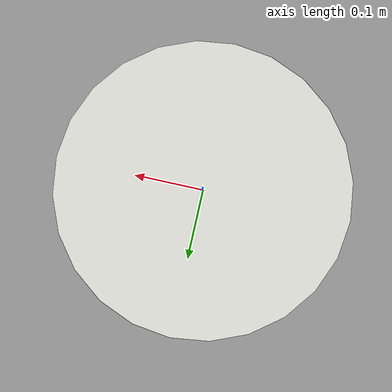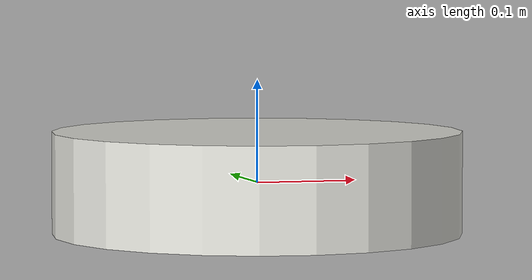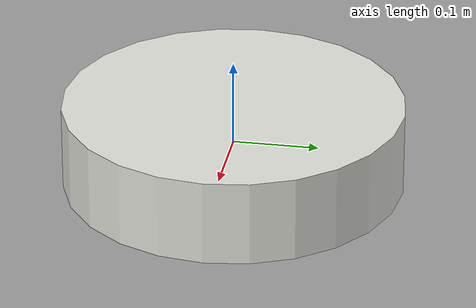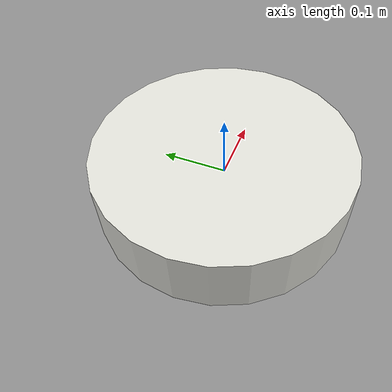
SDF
<?xml version="1.0"?>
<sdf version="1.9">
  <model name="sweepi">
    <pose>0 0 0 0 0 0</pose>

    <link name="base_footprint"/>

    <link name="base_link">
      <inertial>
        <mass>3.0</mass>
        <inertia>
          <ixx>0.0208</ixx>
          <ixy>0.0</ixy>
          <ixz>0.0</ixz>
          <iyy>0.0208</iyy>
          <iyz>0.0</iyz>
          <izz>0.0300</izz>
        </inertia>
      </inertial>

      <collision name="base_collision">
        <geometry>
          <cylinder>
            <radius>0.200</radius>
            <length>0.100</length>
          </cylinder>
        </geometry>
      </collision>

      <visual name="base_visual">
        <geometry>
          <cylinder>
            <radius>0.200</radius>
            <length>0.100</length>
          </cylinder>
        </geometry>
        <material>
          <ambient>0.88 0.88 0.85 1.0</ambient>
          <diffuse>0.88 0.88 0.85 1.0</diffuse>
        </material>
      </visual>
    </link>

    <link name="left_wheel_link">
      <inertial>
        <mass>0.15</mass>
        <inertia>
          <ixx>0.00005</ixx>
          <ixy>0.0</ixy>
          <ixz>0.0</ixz>
          <iyy>0.00005</iyy>
          <iyz>0.0</iyz>
          <izz>0.00009</izz>
        </inertia>
      </inertial>

      <collision name="wheel_left_collision">
        <pose>0 0 0 1.5708 0 0</pose>
        <geometry>
          <cylinder>
            <radius>0.025</radius>
            <length>0.020</length>
          </cylinder>
        </geometry>
      </collision>

      <visual name="wheel_left_visual">
        <pose>0 0 0 1.5708 0 0</pose>
        <geometry>
          <cylinder>
            <radius>0.025</radius>
            <length>0.020</length>
          </cylinder>
        </geometry>
        <material>
          <ambient>0.1 0.1 0.1 1.0</ambient>
          <diffuse>0.1 0.1 0.1 1.0</diffuse>
        </material>
      </visual>
    </link>

    <link name="right_wheel_link">
      <inertial>
        <mass>0.15</mass>
        <inertia>
          <ixx>0.00005</ixx>
          <ixy>0.0</ixy>
          <ixz>0.0</ixz>
          <iyy>0.00005</iyy>
          <iyz>0.0</iyz>
          <izz>0.00009</izz>
        </inertia>
      </inertial>

      <collision name="wheel_right_collision">
        <pose>0 0 0 1.5708 0 0</pose>
        <geometry>
          <cylinder>
            <radius>0.025</radius>
            <length>0.020</length>
          </cylinder>
        </geometry>
      </collision>

      <visual name="wheel_right_visual">
        <pose>0 0 0 1.5708 0 0</pose>
        <geometry>
          <cylinder>
            <radius>0.025</radius>
            <length>0.020</length>
          </cylinder>
        </geometry>
        <material>
          <ambient>0.1 0.1 0.1 1.0</ambient>
          <diffuse>0.1 0.1 0.1 1.0</diffuse>
        </material>
      </visual>
    </link>

    <link name="front_caster_link">
      <inertial>
        <mass>0.05</mass>
        <inertia>
          <ixx>0.00001</ixx>
          <ixy>0.0</ixy>
          <ixz>0.0</ixz>
          <iyy>0.00001</iyy>
          <iyz>0.0</iyz>
          <izz>0.00001</izz>
        </inertia>
      </inertial>

      <collision name="front_caster_collision">
        <geometry>
          <sphere>
            <radius>0.010</radius>
          </sphere>
        </geometry>
      </collision>

      <visual name="front_caster_visual">
        <geometry>
          <sphere>
            <radius>0.010</radius>
          </sphere>
        </geometry>
        <material>
          <ambient>0.90 0.48 0.13 1.0</ambient>
          <diffuse>0.90 0.48 0.13 1.0</diffuse>
        </material>
      </visual>
    </link>

    <link name="rear_caster_link">
      <inertial>
        <mass>0.05</mass>
        <inertia>
          <ixx>0.00001</ixx>
          <ixy>0.0</ixy>
          <ixz>0.0</ixz>
          <iyy>0.00001</iyy>
          <iyz>0.0</iyz>
          <izz>0.00001</izz>
        </inertia>
      </inertial>

      <collision name="rear_caster_collision">
        <geometry>
          <sphere>
            <radius>0.010</radius>
          </sphere>
        </geometry>
      </collision>

      <visual name="rear_caster_visual">
        <geometry>
          <sphere>
            <radius>0.010</radius>
          </sphere>
        </geometry>
        <material>
          <ambient>0.90 0.48 0.13 1.0</ambient>
          <diffuse>0.90 0.48 0.13 1.0</diffuse>
        </material>
      </visual>
    </link>

    <link name="lidar_link">
      <inertial>
        <mass>0.17</mass>
        <inertia>
          <ixx>0.0001</ixx>
          <ixy>0.0</ixy>
          <ixz>0.0</ixz>
          <iyy>0.0001</iyy>
          <iyz>0.0</iyz>
          <izz>0.0001</izz>
        </inertia>
      </inertial>

      <collision name="lidar_collision">
        <geometry>
          <cylinder>
            <radius>0.038</radius>
            <length>0.041</length>
          </cylinder>
        </geometry>
      </collision>

      <visual name="lidar_visual">
        <geometry>
          <cylinder>
            <radius>0.038</radius>
            <length>0.041</length>
          </cylinder>
        </geometry>
        <material>
          <ambient>0.2 0.2 0.2 1.0</ambient>
          <diffuse>0.2 0.2 0.2 1.0</diffuse>
        </material>
      </visual>

      <sensor name="gpu_lidar" type="gpu_lidar">
        <topic>scan</topic>
        <update_rate>10</update_rate>
        <always_on>true</always_on>
        <visualize>true</visualize>
        <lidar>
          <scan>
            <horizontal>
              <samples>720</samples>
              <resolution>1</resolution>
              <min_angle>-3.14159</min_angle>
              <max_angle>3.14159</max_angle>
            </horizontal>
          </scan>
          <range>
            <min>0.05</min>
            <max>12.0</max>
            <resolution>0.015</resolution>
          </range>
          <noise>
            <type>gaussian</type>
            <mean>0</mean>
            <stddev>0.01</stddev>
          </noise>
        </lidar>
      </sensor>
    </link>

    <link name="camera_link">
      <inertial>
        <mass>0.05</mass>
        <inertia>
          <ixx>0.00001</ixx>
          <ixy>0.0</ixy>
          <ixz>0.0</ixz>
          <iyy>0.00001</iyy>
          <iyz>0.0</iyz>
          <izz>0.00001</izz>
        </inertia>
      </inertial>

      <collision name="camera_collision">
        <geometry>
          <box>
            <size>0.015 0.090 0.025</size>
          </box>
        </geometry>
      </collision>

      <visual name="camera_visual">
        <geometry>
          <box>
            <size>0.015 0.090 0.025</size>
          </box>
        </geometry>
        <material>
          <ambient>0.2 0.2 0.2 1.0</ambient>
          <diffuse>0.2 0.2 0.2 1.0</diffuse>
        </material>
      </visual>

      <sensor name="camera" type="camera">
        <topic>camera/image_raw</topic>
        <camera>
          <horizontal_fov>1.3962634</horizontal_fov>
          <image>
            <width>640</width>
            <height>480</height>
            <format>R8G8B8</format>
          </image>
          <clip>
            <near>0.1</near>
            <far>15</far>
          </clip>
          <noise>
            <type>gaussian</type>
            <mean>0</mean>
            <stddev>0.007</stddev>
          </noise>
        </camera>
        <always_on>true</always_on>
        <update_rate>20</update_rate>
        <visualize>false</visualize>
      </sensor>
    </link>

    <link name="imu_link">
      <inertial>
        <mass>0.01</mass>
        <inertia>
          <ixx>0.000001</ixx>
          <ixy>0.0</ixy>
          <ixz>0.0</ixz>
          <iyy>0.000001</iyy>
          <iyz>0.0</iyz>
          <izz>0.000001</izz>
        </inertia>
      </inertial>

      <sensor name="tb3_imu" type="imu">
        <always_on>true</always_on>
        <update_rate>200</update_rate>
        <topic>imu</topic>
        <imu>
          <angular_velocity>
            <x>
              <noise type="gaussian">
                <mean>0</mean>
                <stddev>0.0002</stddev>
              </noise>
            </x>
            <y>
              <noise type="gaussian">
                <mean>0</mean>
                <stddev>0.0002</stddev>
              </noise>
            </y>
            <z>
              <noise type="gaussian">
                <mean>0</mean>
                <stddev>0.0002</stddev>
              </noise>
            </z>
          </angular_velocity>
          <linear_acceleration>
            <x>
              <noise type="gaussian">
                <mean>0</mean>
                <stddev>0.017</stddev>
              </noise>
            </x>
            <y>
              <noise type="gaussian">
                <mean>0</mean>
                <stddev>0.017</stddev>
              </noise>
            </y>
            <z>
              <noise type="gaussian">
                <mean>0</mean>
                <stddev>0.017</stddev>
              </noise>
            </z>
          </linear_acceleration>
        </imu>
      </sensor>
    </link>

    <joint name="base_joint" type="fixed">
      <parent>base_footprint</parent>
      <child>base_link</child>
      <pose>0 0 0.07 0 0 0</pose>
    </joint>

    <joint name="base_left_wheel_joint" type="revolute">
      <parent>base_link</parent>
      <child>left_wheel_link</child>
      <pose>0 0.15 -0.047 0 0 0</pose>
      <axis>
        <xyz>0 1 0</xyz>
        <limit>
          <effort>20</effort>
          <velocity>2.0</velocity>
        </limit>
        <dynamics>
          <damping>0.01</damping>
          <friction>0.01</friction>
        </dynamics>
      </axis>
    </joint>

    <joint name="base_right_wheel_joint" type="revolute">
      <parent>base_link</parent>
      <child>right_wheel_link</child>
      <pose>0 -0.15 -0.047 0 0 0</pose>
      <axis>
        <xyz>0 1 0</xyz>
        <limit>
          <effort>20</effort>
          <velocity>2.0</velocity>
        </limit>
        <dynamics>
          <damping>0.01</damping>
          <friction>0.01</friction>
        </dynamics>
      </axis>
    </joint>

    <joint name="base_front_caster_joint" type="ball">
      <parent>base_link</parent>
      <child>front_caster_link</child>
      <pose>0.16 0 -0.059 0 0 0</pose>
    </joint>

    <joint name="base_rear_caster_joint" type="ball">
      <parent>base_link</parent>
      <child>rear_caster_link</child>
      <pose>-0.16 0 -0.059 0 0 0</pose>
    </joint>

    <joint name="lidar_joint" type="fixed">
      <parent>base_link</parent>
      <child>lidar_link</child>
      <pose>0.1 0 0.1 0 0 0</pose>
    </joint>

    <joint name="base_camera_joint" type="fixed">
      <parent>base_link</parent>
      <child>camera_link</child>
      <pose>0.2075 0 0 0 0 0</pose>
    </joint>

    <joint name="imu_joint" type="fixed">
      <parent>base_link</parent>
      <child>imu_link</child>
      <pose>0 0 0.05 0 0 0</pose>
    </joint>

    <plugin filename="gz-sim-diff-drive-system" name="gz::sim::systems::DiffDrive">
      <left_joint>base_left_wheel_joint</left_joint>
      <right_joint>base_right_wheel_joint</right_joint>
      <wheel_separation>0.300</wheel_separation>
      <wheel_radius>0.025</wheel_radius>
      <topic>cmd_vel</topic>
      <odom_topic>odom</odom_topic>
      <frame_id>odom</frame_id>
      <child_frame_id>base_footprint</child_frame_id>
      <odom_publish_frequency>50</odom_publish_frequency>
      <max_linear_acceleration>1.0</max_linear_acceleration>
    </plugin>

    <plugin filename="gz-sim-joint-state-publisher-system" name="gz::sim::systems::JointStatePublisher">
      <topic>joint_states</topic>
      <joint_name>base_left_wheel_joint</joint_name>
      <joint_name>base_right_wheel_joint</joint_name>
    </plugin>

  </model>
</sdf>
